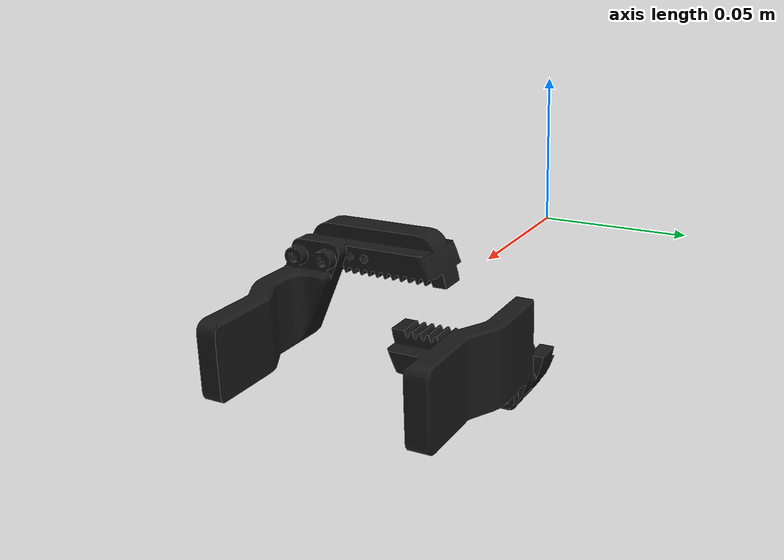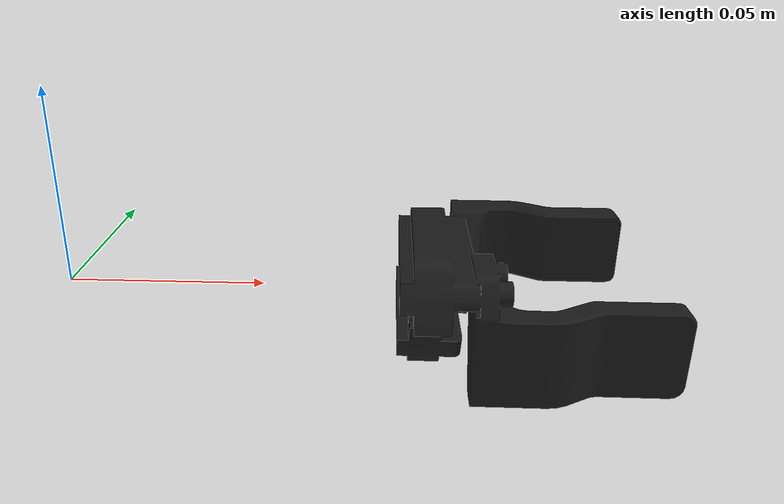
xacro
<?xml version="1.0"?>
<robot xmlns:xacro="http://ros.org/wiki/xacro" name="robotiq_hande" >
  <!-- robotiq_hande_gripper -->
  <xacro:include filename="$(find robotiq_description)/urdf/robotiq_hande.urdf.xacro" />
  <xacro:robotiq_hande prefix="hande_" parent="base_link" MAC="_000000000004">
    <origin rpy="0 0 0" xyz="0 0 0"/>
  </xacro:robotiq_hande>

  <link name="base_link" />

  <gazebo>
    <plugin filename="libgazebo_ros_joint_state_publisher.so" name="hande_joint_state">
      <ros>
        <argument>~/out:=hande_joint_states</argument>
      </ros>
      <update_rate>25</update_rate>
      <joint_name>hande_joint_finger</joint_name>
    </plugin>
  </gazebo>
</robot>

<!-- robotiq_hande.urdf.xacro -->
<robot xmlns:xacro="http://ros.org/wiki/xacro">
  <xacro:macro name="robotiq_hande"  params="prefix parent MAC *origin">
    <joint name="${prefix}robotiq_hande_base_joint" type="fixed">
      <parent link="${parent}"/>
      <child link="${prefix}robotiq_hande_base_link"/>
      <xacro:insert_block name="origin"/>
    </joint>

    <link name="${prefix}robotiq_hande_base_link">
      <inertial>
        <origin xyz="0 0 0.04607" rpy="${pi/2} 0 ${pi/2}" />
        <mass value="0.86387" />
        <inertia ixx="1017560E-9" ixy="0" ixz="2235E-9" iyy="1028041E-9" iyz="0" izz="489810E-9" />
      </inertial>
      <visual>
        <origin xyz="0 0 0" rpy="${pi/2} 0 ${pi/2}" />
        <geometry>
          <mesh filename="package://robotiq_description/meshes/visual/hand-e.dae" scale="0.001 0.001 0.001"/>
        </geometry>
        <material name="Gazebo/Black">
          <color rgba="0.1 0.1 0.1 1" />
        </material>
      </visual>
      <collision>
        <origin xyz="0 0 0" rpy="${pi/2} 0 ${pi/2}" />
        <geometry>
          <mesh filename="package://robotiq_description/meshes/visual/hand-e.dae" scale="0.001 0.001 0.001"/>
        </geometry>
      </collision>
    </link>
    <gazebo reference="${prefix}robotiq_hande_base_link">
      <material>Gazebo/Black</material>
      <selfCollide>True</selfCollide>
    </gazebo>

    <link name="${prefix}robotiq_hande_left_finger">
      <inertial>
        <origin xyz="0.02262 -0.00759 0.00738" rpy="${pi/2} 0 ${pi/2}"/>
        <mass value="0.03804"/>
        <inertia ixx="13567E-9" ixy="1849E-9" ixz="3622E-9" iyy="15784E-9" iyz="3616E-9" izz="7478E-9"/>
      </inertial>
      <visual>
        <origin xyz="0 0 0" rpy="${pi/2} 0 ${pi/2}"/>
        <geometry>
          <mesh filename="package://robotiq_description/meshes/visual/hand-e_finger_1.dae" scale="0.001 0.001 0.001"/>
        </geometry>
        <material name="Gazebo/Grey">
          <color rgba="0.1 0.1 0.1 1"/>
        </material>
      </visual>
      <collision>
        <origin xyz="0 0 0" rpy="${pi/2} 0 ${pi/2}"/>
        <geometry>
          <mesh filename="package://robotiq_description/meshes/visual/hand-e_finger_1.dae" scale="0.001 0.001 0.001"/>
        </geometry>
      </collision>
    </link>
    <gazebo reference="${prefix}robotiq_hande_left_finger">
      <material>Gazebo/Grey</material>
      <selfCollide>True</selfCollide>
    </gazebo>

    <link name="${prefix}robotiq_hande_right_finger">
      <inertial>
        <origin xyz="-0.02262 0.00759 0.00738" rpy="${pi/2} 0 ${pi/2}"/>
        <mass value="0.03804"/>
        <inertia ixx="13567E-9" ixy="1849E-9" ixz="-3622E-9" iyy="15784E-9" iyz="-3616E-9" izz="7478E-9"/>
      </inertial>
      <visual>
        <origin xyz="0 0 0" rpy="${pi/2} 0 ${pi/2}"/>
        <geometry>
          <mesh filename="package://robotiq_description/meshes/visual/hand-e_finger_2.dae" scale="0.001 0.001 0.001"/>
        </geometry>
        <material name="Gazebo/Grey">
          <color rgba="0.1 0.1 0.1 1"/>
        </material>
      </visual>
      <collision>
        <origin xyz="0 0 0" rpy="${pi/2} 0 ${pi/2}"/>
        <geometry>
          <mesh filename="package://robotiq_description/meshes/visual/hand-e_finger_2.dae" scale="0.001 0.001 0.001"/>
        </geometry>
      </collision>
    </link>
    <gazebo reference="${prefix}robotiq_hande_right_finger">
      <material>Gazebo/Grey</material>
      <selfCollide>True</selfCollide>
    </gazebo>

    <joint name="${prefix}robotiq_hande_joint_finger" type="prismatic">
      <origin xyz="0.099 0 0" rpy="0 0 0"/>
      <parent link="${prefix}robotiq_hande_base_link"/>
      <child link="${prefix}robotiq_hande_left_finger"/>
      <axis xyz="0 -1 0"/>
      <limit effort="130" lower="0" upper="0.025" velocity="0.15"/>
    </joint>

    <joint name="robotiq_hande_base_to_${prefix}robotiq_hande_right_finger" type="prismatic">
      <origin xyz="0.099 0 0" rpy="0 0 0"/>
      <parent link="${prefix}robotiq_hande_base_link"/>
      <child link="${prefix}robotiq_hande_right_finger"/>
      <axis xyz="0 1 0"/>
      <limit effort="130" lower="0" upper="0.025" velocity="0.15"/>
      <mimic joint="${prefix}robotiq_hande_joint_finger" multiplier="1" offset="0"/>
    </joint>

    <gazebo>
      <plugin filename="librobotiq_gripper_gazebo_plugin.so" name="hrim_actuator_gripper${MAC}">
        <kp>500</kp>
        <ki>3</ki>
        <kd>9</kd>
        <min_velocity>20</min_velocity>
        <max_velocity>150</max_velocity>
        <joint>${prefix}joint_finger</joint>
        <joint>robotiq_hande_base_to_${prefix}right_finger</joint>
      </plugin>
    </gazebo>
  </xacro:macro>
</robot>
